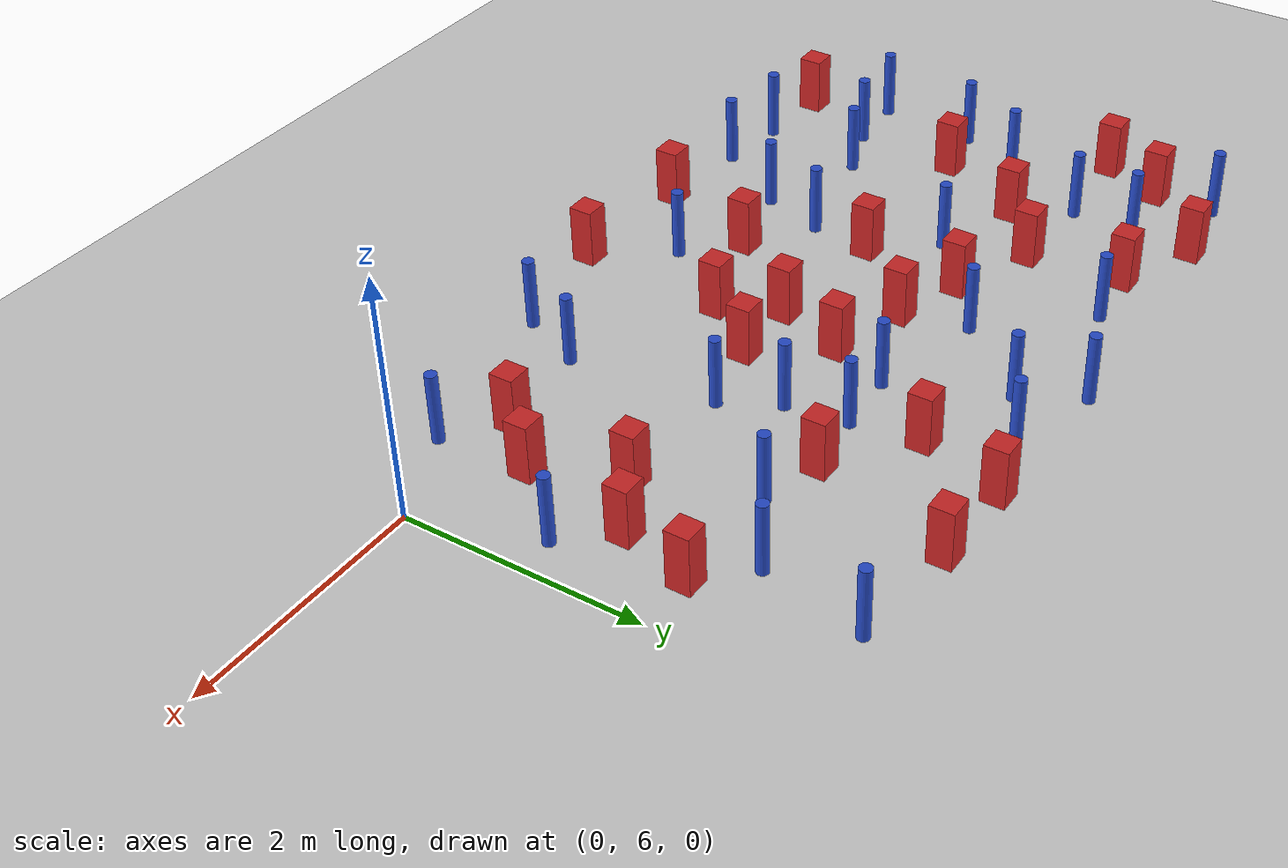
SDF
<sdf version="1.6">
 <world name="default">
  <model name="ground_plane">
   <static>1</static>
   <link name="link">
    <collision name="collision">
     <geometry><plane><normal>0 0 1</normal><size>100 100</size></plane></geometry>
     <surface><friction><ode><mu>100</mu><mu2>50</mu2></ode></friction></surface>
    </collision>
    <visual name="visual">
     <cast_shadows>0</cast_shadows>
     <geometry><plane><normal>0 0 1</normal><size>100 100</size></plane></geometry>
     <material>
      <ambient>1.0 1.0 1.0 1.0</ambient>
      <diffuse>0.8 0.8 0.8 1.0</diffuse>
      <specular>0.01 0.01 0.01 1.000000</specular>
     </material>
    </visual>
   </link>
  </model>
  <model name="square_post_obstacle2">
   <static>true</static>
   <pose>-4.08696699237 6.18020313436 1.91545236811e-07 -7.35059704564e-06 1.12565212e-07 2.39332434364e-05</pose>
   <link name="link">
    <pose>0 0 0.25 0 -0 0</pose>
    <inertial>
     <mass>100</mass>
     <inertia>
      <ixx>0.166667</ixx>
      <ixy>0</ixy>
      <ixz>0</ixz>
      <iyy>0.166667</iyy>
      <iyz>0</iyz>
      <izz>0.166667</izz>
     </inertia>
    </inertial>
    <collision name="collision"><geometry><box><size>.2 .2 .5</size></box></geometry></collision>
    <visual name="visual">
     <geometry><box><size>.2 .2 .5</size></box></geometry>
     <material>
      <script><name>Gazebo/Red</name><uri>file://media/materials/scripts/gazebo.material</uri></script>
     </material>
    </visual>
   </link>
  </model>
  <model name="pole_obstacle3">
   <static>true</static>
   <pose>-3.40958924151 8.97512977727 7.38925637345e-09 -8.47170692799e-08 1.24976765012e-08 -1.74513093021e-07</pose>
   <link name="link">
    <pose>0 0 0.3 0 -0 0</pose>
    <inertial>
     <mass>1</mass>
     <inertia><ixx>0.145833</ixx><ixy>0</ixy><ixz>0</ixz><iyy>0.145833</iyy><iyz>0</iyz><izz>0.125</izz></inertia>
    </inertial>
    <collision name="collision">
     <geometry><cylinder><radius>0.05</radius><length>.6</length></cylinder></geometry>
    </collision>
    <visual name="visual">
     <geometry><cylinder><radius>0.05</radius><length>.6</length></cylinder></geometry>
     <material>
      <script><name>Gazebo/Blue</name><uri>file://media/materials/scripts/gazebo.material</uri></script>
     </material>
    </visual>
   </link>
  </model>
  <model name="square_post_obstacle4">
   <static>true</static>
   <pose>-1.94257678499 8.1703270499 1.91545236811e-07 -7.35059704564e-06 1.12565212e-07 2.39332434364e-05</pose>
   <link name="link">
    <pose>0 0 0.25 0 -0 0</pose>
    <inertial>
     <mass>100</mass>
     <inertia>
      <ixx>0.166667</ixx>
      <ixy>0</ixy>
      <ixz>0</ixz>
      <iyy>0.166667</iyy>
      <iyz>0</iyz>
      <izz>0.166667</izz>
     </inertia>
    </inertial>
    <collision name="collision"><geometry><box><size>.2 .2 .5</size></box></geometry></collision>
    <visual name="visual">
     <geometry><box><size>.2 .2 .5</size></box></geometry>
     <material>
      <script><name>Gazebo/Red</name><uri>file://media/materials/scripts/gazebo.material</uri></script>
     </material>
    </visual>
   </link>
  </model>
  <model name="pole_obstacle15">
   <static>true</static>
   <pose>-2.49472239428 8.10000024564 7.38925637345e-09 -8.47170692793e-08 1.24976764408e-08 -1.74513093041e-07</pose>
   <link name="link">
    <pose>0 0 0.3 0 -0 0</pose>
    <inertial>
     <mass>1</mass>
     <inertia><ixx>0.145833</ixx><ixy>0</ixy><ixz>0</ixz><iyy>0.145833</iyy><iyz>0</iyz><izz>0.125</izz></inertia>
    </inertial>
    <collision name="collision">
     <geometry><cylinder><radius>0.05</radius><length>.6</length></cylinder></geometry>
    </collision>
    <visual name="visual">
     <geometry><cylinder><radius>0.05</radius><length>.6</length></cylinder></geometry>
     <material>
      <script><name>Gazebo/Blue</name><uri>file://media/materials/scripts/gazebo.material</uri></script>
     </material>
    </visual>
   </link>
  </model>
  <model name="pole_obstacle21">
   <static>true</static>
   <pose>-2.42110401922 7.58656722481 7.38925637345e-09 -8.47170692798e-08 1.24976765033e-08 -1.74513093019e-07</pose>
   <link name="link">
    <pose>0 0 0.3 0 -0 0</pose>
    <inertial>
     <mass>1</mass>
     <inertia><ixx>0.145833</ixx><ixy>0</ixy><ixz>0</ixz><iyy>0.145833</iyy><iyz>0</iyz><izz>0.125</izz></inertia>
    </inertial>
    <collision name="collision">
     <geometry><cylinder><radius>0.05</radius><length>.6</length></cylinder></geometry>
    </collision>
    <visual name="visual">
     <geometry><cylinder><radius>0.05</radius><length>.6</length></cylinder></geometry>
     <material>
      <script><name>Gazebo/Blue</name><uri>file://media/materials/scripts/gazebo.material</uri></script>
     </material>
    </visual>
   </link>
  </model>
  <model name="pole_obstacle25">
   <static>true</static>
   <pose>-2.28186651283 5.36492532346 7.38925637345e-09 -8.47170692798e-08 1.24976765033e-08 -1.74513093019e-07</pose>
   <link name="link">
    <pose>0 0 0.3 0 -0 0</pose>
    <inertial>
     <mass>1</mass>
     <inertia><ixx>0.145833</ixx><ixy>0</ixy><ixz>0</ixz><iyy>0.145833</iyy><iyz>0</iyz><izz>0.125</izz></inertia>
    </inertial>
    <collision name="collision">
     <geometry><cylinder><radius>0.05</radius><length>.6</length></cylinder></geometry>
    </collision>
    <visual name="visual">
     <geometry><cylinder><radius>0.05</radius><length>.6</length></cylinder></geometry>
     <material>
      <script><name>Gazebo/Blue</name><uri>file://media/materials/scripts/gazebo.material</uri></script>
     </material>
    </visual>
   </link>
  </model>
  <model name="pole_obstacle29">
   <static>true</static>
   <pose>-4.01178348457 8.30314421972 7.38925637345e-09 -8.47170692799e-08 1.24976765075e-08 -1.74513093015e-07</pose>
   <link name="link">
    <pose>0 0 0.3 0 -0 0</pose>
    <inertial>
     <mass>1</mass>
     <inertia><ixx>0.145833</ixx><ixy>0</ixy><ixz>0</ixz><iyy>0.145833</iyy><iyz>0</iyz><izz>0.125</izz></inertia>
    </inertial>
    <collision name="collision">
     <geometry><cylinder><radius>0.05</radius><length>.6</length></cylinder></geometry>
    </collision>
    <visual name="visual">
     <geometry><cylinder><radius>0.05</radius><length>.6</length></cylinder></geometry>
     <material>
      <script><name>Gazebo/Blue</name><uri>file://media/materials/scripts/gazebo.material</uri></script>
     </material>
    </visual>
   </link>
  </model>
  <model name="pole_obstacle35">
   <static>true</static>
   <pose>-4.69160205721 9.10326875302 7.38925637345e-09 -8.471706928e-08 1.24976765081e-08 -1.74513093015e-07</pose>
   <link name="link">
    <pose>0 0 0.3 0 -0 0</pose>
    <inertial>
     <mass>1</mass>
     <inertia><ixx>0.145833</ixx><ixy>0</ixy><ixz>0</ixz><iyy>0.145833</iyy><iyz>0</iyz><izz>0.125</izz></inertia>
    </inertial>
    <collision name="collision">
     <geometry><cylinder><radius>0.05</radius><length>.6</length></cylinder></geometry>
    </collision>
    <visual name="visual">
     <geometry><cylinder><radius>0.05</radius><length>.6</length></cylinder></geometry>
     <material>
      <script><name>Gazebo/Blue</name><uri>file://media/materials/scripts/gazebo.material</uri></script>
     </material>
    </visual>
   </link>
  </model>
  <model name="square_post_obstacle36">
   <static>true</static>
   <pose>-0.634425203087 7.41490319729 1.91545236811e-07 -7.35059704564e-06 1.12565212e-07 2.39332434364e-05</pose>
   <link name="link">
    <pose>0 0 0.25 0 -0 0</pose>
    <inertial>
     <mass>100</mass>
     <inertia>
      <ixx>0.166667</ixx>
      <ixy>0</ixy>
      <ixz>0</ixz>
      <iyy>0.166667</iyy>
      <iyz>0</iyz>
      <izz>0.166667</izz>
     </inertia>
    </inertial>
    <collision name="collision"><geometry><box><size>.2 .2 .5</size></box></geometry></collision>
    <visual name="visual">
     <geometry><box><size>.2 .2 .5</size></box></geometry>
     <material>
      <script><name>Gazebo/Red</name><uri>file://media/materials/scripts/gazebo.material</uri></script>
     </material>
    </visual>
   </link>
  </model>
  <model name="square_post_obstacle39">
   <static>true</static>
   <pose>-1.19365380607 6.01688733724 1.91545236811e-07 -7.35059704564e-06 1.12565212e-07 2.39332434364e-05</pose>
   <link name="link">
    <pose>0 0 0.25 0 -0 0</pose>
    <inertial>
     <mass>100</mass>
     <inertia>
      <ixx>0.166667</ixx>
      <ixy>0</ixy>
      <ixz>0</ixz>
      <iyy>0.166667</iyy>
      <iyz>0</iyz>
      <izz>0.166667</izz>
     </inertia>
    </inertial>
    <collision name="collision"><geometry><box><size>.2 .2 .5</size></box></geometry></collision>
    <visual name="visual">
     <geometry><box><size>.2 .2 .5</size></box></geometry>
     <material>
      <script><name>Gazebo/Red</name><uri>file://media/materials/scripts/gazebo.material</uri></script>
     </material>
    </visual>
   </link>
  </model>
  <model name="pole_obstacle39">
   <static>true</static>
   <pose>-4.96155892591 7.56960836068 7.38925637345e-09 -8.47170692796e-08 1.24976764786e-08 -1.74513093032e-07</pose>
   <link name="link">
    <pose>0 0 0.3 0 -0 0</pose>
    <inertial>
     <mass>1</mass>
     <inertia><ixx>0.145833</ixx><ixy>0</ixy><ixz>0</ixz><iyy>0.145833</iyy><iyz>0</iyz><izz>0.125</izz></inertia>
    </inertial>
    <collision name="collision">
     <geometry><cylinder><radius>0.05</radius><length>.6</length></cylinder></geometry>
    </collision>
    <visual name="visual">
     <geometry><cylinder><radius>0.05</radius><length>.6</length></cylinder></geometry>
     <material>
      <script><name>Gazebo/Blue</name><uri>file://media/materials/scripts/gazebo.material</uri></script>
     </material>
    </visual>
   </link>
  </model>
  <model name="square_post_obstacle40">
   <static>true</static>
   <pose>-2.3351045229 9.38596355213 1.91545236811e-07 -7.35059704564e-06 1.12565212e-07 2.39332434364e-05</pose>
   <link name="link">
    <pose>0 0 0.25 0 -0 0</pose>
    <inertial>
     <mass>100</mass>
     <inertia>
      <ixx>0.166667</ixx>
      <ixy>0</ixy>
      <ixz>0</ixz>
      <iyy>0.166667</iyy>
      <iyz>0</iyz>
      <izz>0.166667</izz>
     </inertia>
    </inertial>
    <collision name="collision"><geometry><box><size>.2 .2 .5</size></box></geometry></collision>
    <visual name="visual">
     <geometry><box><size>.2 .2 .5</size></box></geometry>
     <material>
      <script><name>Gazebo/Red</name><uri>file://media/materials/scripts/gazebo.material</uri></script>
     </material>
    </visual>
   </link>
  </model>
  <model name="square_post_obstacle42">
   <static>true</static>
   <pose>-5.15264090439 8.25051557948 1.91545236811e-07 -7.35059704564e-06 1.12565212e-07 2.39332434364e-05</pose>
   <link name="link">
    <pose>0 0 0.25 0 -0 0</pose>
    <inertial>
     <mass>100</mass>
     <inertia>
      <ixx>0.166667</ixx>
      <ixy>0</ixy>
      <ixz>0</ixz>
      <iyy>0.166667</iyy>
      <iyz>0</iyz>
      <izz>0.166667</izz>
     </inertia>
    </inertial>
    <collision name="collision"><geometry><box><size>.2 .2 .5</size></box></geometry></collision>
    <visual name="visual">
     <geometry><box><size>.2 .2 .5</size></box></geometry>
     <material>
      <script><name>Gazebo/Red</name><uri>file://media/materials/scripts/gazebo.material</uri></script>
     </material>
    </visual>
   </link>
  </model>
  <model name="square_post_obstacle46">
   <static>true</static>
   <pose>-3.21342774587 7.56674703416 1.91545236811e-07 -7.35059704564e-06 1.12565212e-07 2.39332434364e-05</pose>
   <link name="link">
    <pose>0 0 0.25 0 -0 0</pose>
    <inertial>
     <mass>100</mass>
     <inertia>
      <ixx>0.166667</ixx>
      <ixy>0</ixy>
      <ixz>0</ixz>
      <iyy>0.166667</iyy>
      <iyz>0</iyz>
      <izz>0.166667</izz>
     </inertia>
    </inertial>
    <collision name="collision"><geometry><box><size>.2 .2 .5</size></box></geometry></collision>
    <visual name="visual">
     <geometry><box><size>.2 .2 .5</size></box></geometry>
     <material>
      <script><name>Gazebo/Red</name><uri>file://media/materials/scripts/gazebo.material</uri></script>
     </material>
    </visual>
   </link>
  </model>
  <model name="square_post_obstacle47">
   <static>true</static>
   <pose>-3.87257575507 7.75654048685 1.91545236811e-07 -7.35059704564e-06 1.12565212e-07 2.39332434364e-05</pose>
   <link name="link">
    <pose>0 0 0.25 0 -0 0</pose>
    <inertial>
     <mass>100</mass>
     <inertia>
      <ixx>0.166667</ixx>
      <ixy>0</ixy>
      <ixz>0</ixz>
      <iyy>0.166667</iyy>
      <iyz>0</iyz>
      <izz>0.166667</izz>
     </inertia>
    </inertial>
    <collision name="collision"><geometry><box><size>.2 .2 .5</size></box></geometry></collision>
    <visual name="visual">
     <geometry><box><size>.2 .2 .5</size></box></geometry>
     <material>
      <script><name>Gazebo/Red</name><uri>file://media/materials/scripts/gazebo.material</uri></script>
     </material>
    </visual>
   </link>
  </model>
  <model name="square_post_obstacle48">
   <static>true</static>
   <pose>-6.09147050206 7.04493701776 1.91545236811e-07 -7.35059704564e-06 1.12565212e-07 2.39332434364e-05</pose>
   <link name="link">
    <pose>0 0 0.25 0 -0 0</pose>
    <inertial>
     <mass>100</mass>
     <inertia>
      <ixx>0.166667</ixx>
      <ixy>0</ixy>
      <ixz>0</ixz>
      <iyy>0.166667</iyy>
      <iyz>0</iyz>
      <izz>0.166667</izz>
     </inertia>
    </inertial>
    <collision name="collision"><geometry><box><size>.2 .2 .5</size></box></geometry></collision>
    <visual name="visual">
     <geometry><box><size>.2 .2 .5</size></box></geometry>
     <material>
      <script><name>Gazebo/Red</name><uri>file://media/materials/scripts/gazebo.material</uri></script>
     </material>
    </visual>
   </link>
  </model>
  <model name="pole_obstacle52">
   <static>true</static>
   <pose>-1.44875402154 8.01813655431 7.38925637345e-09 -8.471706928e-08 1.24976765113e-08 -1.74513093014e-07</pose>
   <link name="link">
    <pose>0 0 0.3 0 -0 0</pose>
    <inertial>
     <mass>1</mass>
     <inertia><ixx>0.145833</ixx><ixy>0</ixy><ixz>0</ixz><iyy>0.145833</iyy><iyz>0</iyz><izz>0.125</izz></inertia>
    </inertial>
    <collision name="collision">
     <geometry><cylinder><radius>0.05</radius><length>.6</length></cylinder></geometry>
    </collision>
    <visual name="visual">
     <geometry><cylinder><radius>0.05</radius><length>.6</length></cylinder></geometry>
     <material>
      <script><name>Gazebo/Blue</name><uri>file://media/materials/scripts/gazebo.material</uri></script>
     </material>
    </visual>
   </link>
  </model>
  <model name="pole_obstacle53">
   <static>true</static>
   <pose>-4.7933635278 5.99765492462 7.38925637345e-09 -8.47170692796e-08 1.24976764786e-08 -1.74513093032e-07</pose>
   <link name="link">
    <pose>0 0 0.3 0 -0 0</pose>
    <inertial>
     <mass>1</mass>
     <inertia><ixx>0.145833</ixx><ixy>0</ixy><ixz>0</ixz><iyy>0.145833</iyy><iyz>0</iyz><izz>0.125</izz></inertia>
    </inertial>
    <collision name="collision">
     <geometry><cylinder><radius>0.05</radius><length>.6</length></cylinder></geometry>
    </collision>
    <visual name="visual">
     <geometry><cylinder><radius>0.05</radius><length>.6</length></cylinder></geometry>
     <material>
      <script><name>Gazebo/Blue</name><uri>file://media/materials/scripts/gazebo.material</uri></script>
     </material>
    </visual>
   </link>
  </model>
  <model name="pole_obstacle59">
   <static>true</static>
   <pose>-0.77320267444 5.66204168332 7.38925637345e-09 -8.471706928e-08 1.24976765086e-08 -1.74513093015e-07</pose>
   <link name="link">
    <pose>0 0 0.3 0 -0 0</pose>
    <inertial>
     <mass>1</mass>
     <inertia><ixx>0.145833</ixx><ixy>0</ixy><ixz>0</ixz><iyy>0.145833</iyy><iyz>0</iyz><izz>0.125</izz></inertia>
    </inertial>
    <collision name="collision">
     <geometry><cylinder><radius>0.05</radius><length>.6</length></cylinder></geometry>
    </collision>
    <visual name="visual">
     <geometry><cylinder><radius>0.05</radius><length>.6</length></cylinder></geometry>
     <material>
      <script><name>Gazebo/Blue</name><uri>file://media/materials/scripts/gazebo.material</uri></script>
     </material>
    </visual>
   </link>
  </model>
  <model name="pole_obstacle68">
   <static>true</static>
   <pose>-5.6582532612 6.30687704618 7.38925637345e-09 -8.47170692796e-08 1.24976764786e-08 -1.74513093032e-07</pose>
   <link name="link">
    <pose>0 0 0.3 0 -0 0</pose>
    <inertial>
     <mass>1</mass>
     <inertia><ixx>0.145833</ixx><ixy>0</ixy><ixz>0</ixz><iyy>0.145833</iyy><iyz>0</iyz><izz>0.125</izz></inertia>
    </inertial>
    <collision name="collision">
     <geometry><cylinder><radius>0.05</radius><length>.6</length></cylinder></geometry>
    </collision>
    <visual name="visual">
     <geometry><cylinder><radius>0.05</radius><length>.6</length></cylinder></geometry>
     <material>
      <script><name>Gazebo/Blue</name><uri>file://media/materials/scripts/gazebo.material</uri></script>
     </material>
    </visual>
   </link>
  </model>
  <model name="pole_obstacle86">
   <static>true</static>
   <pose>-6.60397817089 9.28048440079 7.38925637345e-09 -8.471706928e-08 1.24976765081e-08 -1.74513093015e-07</pose>
   <link name="link">
    <pose>0 0 0.3 0 -0 0</pose>
    <inertial>
     <mass>1</mass>
     <inertia><ixx>0.145833</ixx><ixy>0</ixy><ixz>0</ixz><iyy>0.145833</iyy><iyz>0</iyz><izz>0.125</izz></inertia>
    </inertial>
    <collision name="collision">
     <geometry><cylinder><radius>0.05</radius><length>.6</length></cylinder></geometry>
    </collision>
    <visual name="visual">
     <geometry><cylinder><radius>0.05</radius><length>.6</length></cylinder></geometry>
     <material>
      <script><name>Gazebo/Blue</name><uri>file://media/materials/scripts/gazebo.material</uri></script>
     </material>
    </visual>
   </link>
  </model>
  <model name="pole_obstacle91">
   <static>true</static>
   <pose>-6.35601513902 7.51399601596 7.38925637345e-09 -8.47170692796e-08 1.24976764786e-08 -1.74513093032e-07</pose>
   <link name="link">
    <pose>0 0 0.3 0 -0 0</pose>
    <inertial>
     <mass>1</mass>
     <inertia><ixx>0.145833</ixx><ixy>0</ixy><ixz>0</ixz><iyy>0.145833</iyy><iyz>0</iyz><izz>0.125</izz></inertia>
    </inertial>
    <collision name="collision">
     <geometry><cylinder><radius>0.05</radius><length>.6</length></cylinder></geometry>
    </collision>
    <visual name="visual">
     <geometry><cylinder><radius>0.05</radius><length>.6</length></cylinder></geometry>
     <material>
      <script><name>Gazebo/Blue</name><uri>file://media/materials/scripts/gazebo.material</uri></script>
     </material>
    </visual>
   </link>
  </model>
  <model name="pole_obstacle101">
   <static>true</static>
   <pose>-3.71044978352 5.77630626236 7.38925637345e-09 -8.47170692794e-08 1.24976764468e-08 -1.7451309304e-07</pose>
   <link name="link">
    <pose>0 0 0.3 0 -0 0</pose>
    <inertial>
     <mass>1</mass>
     <inertia><ixx>0.145833</ixx><ixy>0</ixy><ixz>0</ixz><iyy>0.145833</iyy><iyz>0</iyz><izz>0.125</izz></inertia>
    </inertial>
    <collision name="collision">
     <geometry><cylinder><radius>0.05</radius><length>.6</length></cylinder></geometry>
    </collision>
    <visual name="visual">
     <geometry><cylinder><radius>0.05</radius><length>.6</length></cylinder></geometry>
     <material>
      <script><name>Gazebo/Blue</name><uri>file://media/materials/scripts/gazebo.material</uri></script>
     </material>
    </visual>
   </link>
  </model>
  <model name="square_post_obstacle95">
   <static>true</static>
   <pose>-1.58668031617 9.36268741837 1.91545236811e-07 -7.35059704564e-06 1.12565212e-07 2.39332434364e-05</pose>
   <link name="link">
    <pose>0 0 0.25 0 -0 0</pose>
    <inertial>
     <mass>100</mass>
     <inertia>
      <ixx>0.166667</ixx>
      <ixy>0</ixy>
      <ixz>0</ixz>
      <iyy>0.166667</iyy>
      <iyz>0</iyz>
      <izz>0.166667</izz>
     </inertia>
    </inertial>
    <collision name="collision"><geometry><box><size>.2 .2 .5</size></box></geometry></collision>
    <visual name="visual">
     <geometry><box><size>.2 .2 .5</size></box></geometry>
     <material>
      <script><name>Gazebo/Red</name><uri>file://media/materials/scripts/gazebo.material</uri></script>
     </material>
    </visual>
   </link>
  </model>
  <model name="square_post_obstacle102">
   <static>true</static>
   <pose>-0.820459691793 6.43376785788 1.91545236811e-07 -7.35059704564e-06 1.12565212e-07 2.39332434364e-05</pose>
   <link name="link">
    <pose>0 0 0.25 0 -0 0</pose>
    <inertial>
     <mass>100</mass>
     <inertia>
      <ixx>0.166667</ixx>
      <ixy>0</ixy>
      <ixz>0</ixz>
      <iyy>0.166667</iyy>
      <iyz>0</iyz>
      <izz>0.166667</izz>
     </inertia>
    </inertial>
    <collision name="collision"><geometry><box><size>.2 .2 .5</size></box></geometry></collision>
    <visual name="visual">
     <geometry><box><size>.2 .2 .5</size></box></geometry>
     <material>
      <script><name>Gazebo/Red</name><uri>file://media/materials/scripts/gazebo.material</uri></script>
     </material>
    </visual>
   </link>
  </model>
  <model name="pole_obstacle118">
   <static>true</static>
   <pose>-5.22107887538 5.32691213291 7.38925637345e-09 -8.47170692796e-08 1.24976764786e-08 -1.74513093032e-07</pose>
   <link name="link">
    <pose>0 0 0.3 0 -0 0</pose>
    <inertial>
     <mass>1</mass>
     <inertia><ixx>0.145833</ixx><ixy>0</ixy><ixz>0</ixz><iyy>0.145833</iyy><iyz>0</iyz><izz>0.125</izz></inertia>
    </inertial>
    <collision name="collision">
     <geometry><cylinder><radius>0.05</radius><length>.6</length></cylinder></geometry>
    </collision>
    <visual name="visual">
     <geometry><cylinder><radius>0.05</radius><length>.6</length></cylinder></geometry>
     <material>
      <script><name>Gazebo/Blue</name><uri>file://media/materials/scripts/gazebo.material</uri></script>
     </material>
    </visual>
   </link>
  </model>
  <model name="square_post_obstacle105">
   <static>true</static>
   <pose>-0.468337408497 8.0217643782 1.91545236811e-07 -7.35059704564e-06 1.12565212e-07 2.39332434364e-05</pose>
   <link name="link">
    <pose>0 0 0.25 0 -0 0</pose>
    <inertial>
     <mass>100</mass>
     <inertia>
      <ixx>0.166667</ixx>
      <ixy>0</ixy>
      <ixz>0</ixz>
      <iyy>0.166667</iyy>
      <iyz>0</iyz>
      <izz>0.166667</izz>
     </inertia>
    </inertial>
    <collision name="collision"><geometry><box><size>.2 .2 .5</size></box></geometry></collision>
    <visual name="visual">
     <geometry><box><size>.2 .2 .5</size></box></geometry>
     <material>
      <script><name>Gazebo/Red</name><uri>file://media/materials/scripts/gazebo.material</uri></script>
     </material>
    </visual>
   </link>
  </model>
  <model name="square_post_obstacle110">
   <static>true</static>
   <pose>-5.23725024286 9.05527912844 1.91545236811e-07 -7.35059704564e-06 1.12565212e-07 2.39332434364e-05</pose>
   <link name="link">
    <pose>0 0 0.25 0 -0 0</pose>
    <inertial>
     <mass>100</mass>
     <inertia>
      <ixx>0.166667</ixx>
      <ixy>0</ixy>
      <ixz>0</ixz>
      <iyy>0.166667</iyy>
      <iyz>0</iyz>
      <izz>0.166667</izz>
     </inertia>
    </inertial>
    <collision name="collision"><geometry><box><size>.2 .2 .5</size></box></geometry></collision>
    <visual name="visual">
     <geometry><box><size>.2 .2 .5</size></box></geometry>
     <material>
      <script><name>Gazebo/Red</name><uri>file://media/materials/scripts/gazebo.material</uri></script>
     </material>
    </visual>
   </link>
  </model>
  <model name="pole_obstacle123">
   <static>true</static>
   <pose>-2.18525332466 7.13585992671 7.38925637345e-09 -8.47170692798e-08 1.24976765033e-08 -1.74513093019e-07</pose>
   <link name="link">
    <pose>0 0 0.3 0 -0 0</pose>
    <inertial>
     <mass>1</mass>
     <inertia><ixx>0.145833</ixx><ixy>0</ixy><ixz>0</ixz><iyy>0.145833</iyy><iyz>0</iyz><izz>0.125</izz></inertia>
    </inertial>
    <collision name="collision">
     <geometry><cylinder><radius>0.05</radius><length>.6</length></cylinder></geometry>
    </collision>
    <visual name="visual">
     <geometry><cylinder><radius>0.05</radius><length>.6</length></cylinder></geometry>
     <material>
      <script><name>Gazebo/Blue</name><uri>file://media/materials/scripts/gazebo.material</uri></script>
     </material>
    </visual>
   </link>
  </model>
  <model name="pole_obstacle138">
   <static>true</static>
   <pose>-2.04545635734 5.90000535007 7.38925637345e-09 -8.471706928e-08 1.24976765103e-08 -1.74513093015e-07</pose>
   <link name="link">
    <pose>0 0 0.3 0 -0 0</pose>
    <inertial>
     <mass>1</mass>
     <inertia><ixx>0.145833</ixx><ixy>0</ixy><ixz>0</ixz><iyy>0.145833</iyy><iyz>0</iyz><izz>0.125</izz></inertia>
    </inertial>
    <collision name="collision">
     <geometry><cylinder><radius>0.05</radius><length>.6</length></cylinder></geometry>
    </collision>
    <visual name="visual">
     <geometry><cylinder><radius>0.05</radius><length>.6</length></cylinder></geometry>
     <material>
      <script><name>Gazebo/Blue</name><uri>file://media/materials/scripts/gazebo.material</uri></script>
     </material>
    </visual>
   </link>
  </model>
  <model name="pole_obstacle143">
   <static>true</static>
   <pose>-4.62286211676 6.54126792948 7.38925637345e-09 -8.47170692796e-08 1.24976764786e-08 -1.74513093032e-07</pose>
   <link name="link">
    <pose>0 0 0.3 0 -0 0</pose>
    <inertial>
     <mass>1</mass>
     <inertia><ixx>0.145833</ixx><ixy>0</ixy><ixz>0</ixz><iyy>0.145833</iyy><iyz>0</iyz><izz>0.125</izz></inertia>
    </inertial>
    <collision name="collision">
     <geometry><cylinder><radius>0.05</radius><length>.6</length></cylinder></geometry>
    </collision>
    <visual name="visual">
     <geometry><cylinder><radius>0.05</radius><length>.6</length></cylinder></geometry>
     <material>
      <script><name>Gazebo/Blue</name><uri>file://media/materials/scripts/gazebo.material</uri></script>
     </material>
    </visual>
   </link>
  </model>
  <model name="pole_obstacle147">
   <static>true</static>
   <pose>-5.8055686989 5.39411957204 7.38925637345e-09 -8.47170692796e-08 1.24976764786e-08 -1.74513093032e-07</pose>
   <link name="link">
    <pose>0 0 0.3 0 -0 0</pose>
    <inertial>
     <mass>1</mass>
     <inertia><ixx>0.145833</ixx><ixy>0</ixy><ixz>0</ixz><iyy>0.145833</iyy><iyz>0</iyz><izz>0.125</izz></inertia>
    </inertial>
    <collision name="collision">
     <geometry><cylinder><radius>0.05</radius><length>.6</length></cylinder></geometry>
    </collision>
    <visual name="visual">
     <geometry><cylinder><radius>0.05</radius><length>.6</length></cylinder></geometry>
     <material>
      <script><name>Gazebo/Blue</name><uri>file://media/materials/scripts/gazebo.material</uri></script>
     </material>
    </visual>
   </link>
  </model>
  <model name="pole_obstacle150">
   <static>true</static>
   <pose>-6.14178081339 6.13746120378 7.38925637345e-09 -8.47170692796e-08 1.24976764786e-08 -1.74513093032e-07</pose>
   <link name="link">
    <pose>0 0 0.3 0 -0 0</pose>
    <inertial>
     <mass>1</mass>
     <inertia><ixx>0.145833</ixx><ixy>0</ixy><ixz>0</ixz><iyy>0.145833</iyy><iyz>0</iyz><izz>0.125</izz></inertia>
    </inertial>
    <collision name="collision">
     <geometry><cylinder><radius>0.05</radius><length>.6</length></cylinder></geometry>
    </collision>
    <visual name="visual">
     <geometry><cylinder><radius>0.05</radius><length>.6</length></cylinder></geometry>
     <material>
      <script><name>Gazebo/Blue</name><uri>file://media/materials/scripts/gazebo.material</uri></script>
     </material>
    </visual>
   </link>
  </model>
  <model name="pole_obstacle152">
   <static>true</static>
   <pose>-0.655866442568 9.26204357178 7.38925637345e-09 -8.47170692797e-08 1.249767648e-08 -1.74513093032e-07</pose>
   <link name="link">
    <pose>0 0 0.3 0 -0 0</pose>
    <inertial>
     <mass>1</mass>
     <inertia><ixx>0.145833</ixx><ixy>0</ixy><ixz>0</ixz><iyy>0.145833</iyy><iyz>0</iyz><izz>0.125</izz></inertia>
    </inertial>
    <collision name="collision">
     <geometry><cylinder><radius>0.05</radius><length>.6</length></cylinder></geometry>
    </collision>
    <visual name="visual">
     <geometry><cylinder><radius>0.05</radius><length>.6</length></cylinder></geometry>
     <material>
      <script><name>Gazebo/Blue</name><uri>file://media/materials/scripts/gazebo.material</uri></script>
     </material>
    </visual>
   </link>
  </model>
  <model name="pole_obstacle153">
   <static>true</static>
   <pose>-5.97672177642 8.2904693648 7.38925637345e-09 -8.471706928e-08 1.24976765081e-08 -1.74513093015e-07</pose>
   <link name="link">
    <pose>0 0 0.3 0 -0 0</pose>
    <inertial>
     <mass>1</mass>
     <inertia><ixx>0.145833</ixx><ixy>0</ixy><ixz>0</ixz><iyy>0.145833</iyy><iyz>0</iyz><izz>0.125</izz></inertia>
    </inertial>
    <collision name="collision">
     <geometry><cylinder><radius>0.05</radius><length>.6</length></cylinder></geometry>
    </collision>
    <visual name="visual">
     <geometry><cylinder><radius>0.05</radius><length>.6</length></cylinder></geometry>
     <material>
      <script><name>Gazebo/Blue</name><uri>file://media/materials/scripts/gazebo.material</uri></script>
     </material>
    </visual>
   </link>
  </model>
  <model name="pole_obstacle154">
   <static>true</static>
   <pose>-0.312014094386 7.00983795267 7.38925637345e-09 -8.471706928e-08 1.24976765079e-08 -1.74513093015e-07</pose>
   <link name="link">
    <pose>0 0 0.3 0 -0 0</pose>
    <inertial>
     <mass>1</mass>
     <inertia><ixx>0.145833</ixx><ixy>0</ixy><ixz>0</ixz><iyy>0.145833</iyy><iyz>0</iyz><izz>0.125</izz></inertia>
    </inertial>
    <collision name="collision">
     <geometry><cylinder><radius>0.05</radius><length>.6</length></cylinder></geometry>
    </collision>
    <visual name="visual">
     <geometry><cylinder><radius>0.05</radius><length>.6</length></cylinder></geometry>
     <material>
      <script><name>Gazebo/Blue</name><uri>file://media/materials/scripts/gazebo.material</uri></script>
     </material>
    </visual>
   </link>
  </model>
  <model name="square_post_obstacle146">
   <static>true</static>
   <pose>-3.28443474042 5.18222889206 1.91545236811e-07 -7.35059704564e-06 1.12565212e-07 2.39332434364e-05</pose>
   <link name="link">
    <pose>0 0 0.25 0 -0 0</pose>
    <inertial>
     <mass>100</mass>
     <inertia>
      <ixx>0.166667</ixx>
      <ixy>0</ixy>
      <ixz>0</ixz>
      <iyy>0.166667</iyy>
      <iyz>0</iyz>
      <izz>0.166667</izz>
     </inertia>
    </inertial>
    <collision name="collision"><geometry><box><size>.2 .2 .5</size></box></geometry></collision>
    <visual name="visual">
     <geometry><box><size>.2 .2 .5</size></box></geometry>
     <material>
      <script><name>Gazebo/Red</name><uri>file://media/materials/scripts/gazebo.material</uri></script>
     </material>
    </visual>
   </link>
  </model>
  <model name="square_post_obstacle148">
   <static>true</static>
   <pose>-6.8069986825 8.25143732754 1.91545236811e-07 -7.35059704564e-06 1.12565212e-07 2.39332434364e-05</pose>
   <link name="link">
    <pose>0 0 0.25 0 -0 0</pose>
    <inertial>
     <mass>100</mass>
     <inertia>
      <ixx>0.166667</ixx>
      <ixy>0</ixy>
      <ixz>0</ixz>
      <iyy>0.166667</iyy>
      <iyz>0</iyz>
      <izz>0.166667</izz>
     </inertia>
    </inertial>
    <collision name="collision"><geometry><box><size>.2 .2 .5</size></box></geometry></collision>
    <visual name="visual">
     <geometry><box><size>.2 .2 .5</size></box></geometry>
     <material>
      <script><name>Gazebo/Red</name><uri>file://media/materials/scripts/gazebo.material</uri></script>
     </material>
    </visual>
   </link>
  </model>
  <model name="square_post_obstacle149">
   <static>true</static>
   <pose>-1.12334226836 7.12361320429 1.91545236811e-07 -7.35059704564e-06 1.12565212e-07 2.39332434364e-05</pose>
   <link name="link">
    <pose>0 0 0.25 0 -0 0</pose>
    <inertial>
     <mass>100</mass>
     <inertia>
      <ixx>0.166667</ixx>
      <ixy>0</ixy>
      <ixz>0</ixz>
      <iyy>0.166667</iyy>
      <iyz>0</iyz>
      <izz>0.166667</izz>
     </inertia>
    </inertial>
    <collision name="collision"><geometry><box><size>.2 .2 .5</size></box></geometry></collision>
    <visual name="visual">
     <geometry><box><size>.2 .2 .5</size></box></geometry>
     <material>
      <script><name>Gazebo/Red</name><uri>file://media/materials/scripts/gazebo.material</uri></script>
     </material>
    </visual>
   </link>
  </model>
  <model name="square_post_obstacle154">
   <static>true</static>
   <pose>-4.54397332136 7.0826201514 1.91545236811e-07 -7.35059704564e-06 1.12565212e-07 2.39332434364e-05</pose>
   <link name="link">
    <pose>0 0 0.25 0 -0 0</pose>
    <inertial>
     <mass>100</mass>
     <inertia>
      <ixx>0.166667</ixx>
      <ixy>0</ixy>
      <ixz>0</ixz>
      <iyy>0.166667</iyy>
      <iyz>0</iyz>
      <izz>0.166667</izz>
     </inertia>
    </inertial>
    <collision name="collision"><geometry><box><size>.2 .2 .5</size></box></geometry></collision>
    <visual name="visual">
     <geometry><box><size>.2 .2 .5</size></box></geometry>
     <material>
      <script><name>Gazebo/Red</name><uri>file://media/materials/scripts/gazebo.material</uri></script>
     </material>
    </visual>
   </link>
  </model>
  <model name="pole_obstacle163">
   <static>true</static>
   <pose>-3.03274331533 8.06505137518 7.38925637345e-09 -8.47170692793e-08 1.24976764408e-08 -1.74513093041e-07</pose>
   <link name="link">
    <pose>0 0 0.3 0 -0 0</pose>
    <inertial>
     <mass>1</mass>
     <inertia><ixx>0.145833</ixx><ixy>0</ixy><ixz>0</ixz><iyy>0.145833</iyy><iyz>0</iyz><izz>0.125</izz></inertia>
    </inertial>
    <collision name="collision">
     <geometry><cylinder><radius>0.05</radius><length>.6</length></cylinder></geometry>
    </collision>
    <visual name="visual">
     <geometry><cylinder><radius>0.05</radius><length>.6</length></cylinder></geometry>
     <material>
      <script><name>Gazebo/Blue</name><uri>file://media/materials/scripts/gazebo.material</uri></script>
     </material>
    </visual>
   </link>
  </model>
  <model name="square_post_obstacle160">
   <static>true</static>
   <pose>-5.68297586807 7.83076603731 1.91545236811e-07 -7.35059704564e-06 1.12565212e-07 2.39332434364e-05</pose>
   <link name="link">
    <pose>0 0 0.25 0 -0 0</pose>
    <inertial>
     <mass>100</mass>
     <inertia>
      <ixx>0.166667</ixx>
      <ixy>0</ixy>
      <ixz>0</ixz>
      <iyy>0.166667</iyy>
      <iyz>0</iyz>
      <izz>0.166667</izz>
     </inertia>
    </inertial>
    <collision name="collision"><geometry><box><size>.2 .2 .5</size></box></geometry></collision>
    <visual name="visual">
     <geometry><box><size>.2 .2 .5</size></box></geometry>
     <material>
      <script><name>Gazebo/Red</name><uri>file://media/materials/scripts/gazebo.material</uri></script>
     </material>
    </visual>
   </link>
  </model>
  <model name="pole_obstacle171">
   <static>true</static>
   <pose>-3.67910185884 9.46648139004 7.38925637345e-09 -8.47170692793e-08 1.24976764408e-08 -1.74513093041e-07</pose>
   <link name="link">
    <pose>0 0 0.3 0 -0 0</pose>
    <inertial>
     <mass>1</mass>
     <inertia><ixx>0.145833</ixx><ixy>0</ixy><ixz>0</ixz><iyy>0.145833</iyy><iyz>0</iyz><izz>0.125</izz></inertia>
    </inertial>
    <collision name="collision">
     <geometry><cylinder><radius>0.05</radius><length>.6</length></cylinder></geometry>
    </collision>
    <visual name="visual">
     <geometry><cylinder><radius>0.05</radius><length>.6</length></cylinder></geometry>
     <material>
      <script><name>Gazebo/Blue</name><uri>file://media/materials/scripts/gazebo.material</uri></script>
     </material>
    </visual>
   </link>
  </model>
  <model name="square_post_obstacle163">
   <static>true</static>
   <pose>-4.45433677787 7.96075167962 1.91545236811e-07 -7.35059704564e-06 1.12565212e-07 2.39332434364e-05</pose>
   <link name="link">
    <pose>0 0 0.25 0 -0 0</pose>
    <inertial>
     <mass>100</mass>
     <inertia>
      <ixx>0.166667</ixx>
      <ixy>0</ixy>
      <ixz>0</ixz>
      <iyy>0.166667</iyy>
      <iyz>0</iyz>
      <izz>0.166667</izz>
     </inertia>
    </inertial>
    <collision name="collision"><geometry><box><size>.2 .2 .5</size></box></geometry></collision>
    <visual name="visual">
     <geometry><box><size>.2 .2 .5</size></box></geometry>
     <material>
      <script><name>Gazebo/Red</name><uri>file://media/materials/scripts/gazebo.material</uri></script>
     </material>
    </visual>
   </link>
  </model>
  <model name="square_post_obstacle167">
   <static>true</static>
   <pose>-3.42352071097 6.97677424563 1.91545236811e-07 -7.35059704564e-06 1.12565212e-07 2.39332434364e-05</pose>
   <link name="link">
    <pose>0 0 0.25 0 -0 0</pose>
    <inertial>
     <mass>100</mass>
     <inertia>
      <ixx>0.166667</ixx>
      <ixy>0</ixy>
      <ixz>0</ixz>
      <iyy>0.166667</iyy>
      <iyz>0</iyz>
      <izz>0.166667</izz>
     </inertia>
    </inertial>
    <collision name="collision"><geometry><box><size>.2 .2 .5</size></box></geometry></collision>
    <visual name="visual">
     <geometry><box><size>.2 .2 .5</size></box></geometry>
     <material>
      <script><name>Gazebo/Red</name><uri>file://media/materials/scripts/gazebo.material</uri></script>
     </material>
    </visual>
   </link>
  </model>
  <model name="pole_obstacle181">
   <static>true</static>
   <pose>-0.836165735155 8.38915919518 7.38925637345e-09 -8.47170692797e-08 1.249767648e-08 -1.74513093032e-07</pose>
   <link name="link">
    <pose>0 0 0.3 0 -0 0</pose>
    <inertial>
     <mass>1</mass>
     <inertia><ixx>0.145833</ixx><ixy>0</ixy><ixz>0</ixz><iyy>0.145833</iyy><iyz>0</iyz><izz>0.125</izz></inertia>
    </inertial>
    <collision name="collision">
     <geometry><cylinder><radius>0.05</radius><length>.6</length></cylinder></geometry>
    </collision>
    <visual name="visual">
     <geometry><cylinder><radius>0.05</radius><length>.6</length></cylinder></geometry>
     <material>
      <script><name>Gazebo/Blue</name><uri>file://media/materials/scripts/gazebo.material</uri></script>
     </material>
    </visual>
   </link>
  </model>
  <model name="pole_obstacle183">
   <static>true</static>
   <pose>-6.60518295874 6.9611081427 7.38925637345e-09 -8.47170692796e-08 1.24976764786e-08 -1.74513093032e-07</pose>
   <link name="link">
    <pose>0 0 0.3 0 -0 0</pose>
    <inertial>
     <mass>1</mass>
     <inertia><ixx>0.145833</ixx><ixy>0</ixy><ixz>0</ixz><iyy>0.145833</iyy><iyz>0</iyz><izz>0.125</izz></inertia>
    </inertial>
    <collision name="collision">
     <geometry><cylinder><radius>0.05</radius><length>.6</length></cylinder></geometry>
    </collision>
    <visual name="visual">
     <geometry><cylinder><radius>0.05</radius><length>.6</length></cylinder></geometry>
     <material>
      <script><name>Gazebo/Blue</name><uri>file://media/materials/scripts/gazebo.material</uri></script>
     </material>
    </visual>
   </link>
  </model>
  <model name="square_post_obstacle173">
   <static>true</static>
   <pose>-5.90993798425 9.36205959601 1.91545236811e-07 -7.35059704564e-06 1.12565212e-07 2.39332434364e-05</pose>
   <link name="link">
    <pose>0 0 0.25 0 -0 0</pose>
    <inertial>
     <mass>100</mass>
     <inertia>
      <ixx>0.166667</ixx>
      <ixy>0</ixy>
      <ixz>0</ixz>
      <iyy>0.166667</iyy>
      <iyz>0</iyz>
      <izz>0.166667</izz>
     </inertia>
    </inertial>
    <collision name="collision"><geometry><box><size>.2 .2 .5</size></box></geometry></collision>
    <visual name="visual">
     <geometry><box><size>.2 .2 .5</size></box></geometry>
     <material>
      <script><name>Gazebo/Red</name><uri>file://media/materials/scripts/gazebo.material</uri></script>
     </material>
    </visual>
   </link>
  </model>
  <model name="square_post_obstacle176">
   <static>true</static>
   <pose>-4.41064235671 5.25064218217 1.91545236811e-07 -7.35059704564e-06 1.12565212e-07 2.39332434364e-05</pose>
   <link name="link">
    <pose>0 0 0.25 0 -0 0</pose>
    <inertial>
     <mass>100</mass>
     <inertia>
      <ixx>0.166667</ixx>
      <ixy>0</ixy>
      <ixz>0</ixz>
      <iyy>0.166667</iyy>
      <iyz>0</iyz>
      <izz>0.166667</izz>
     </inertia>
    </inertial>
    <collision name="collision"><geometry><box><size>.2 .2 .5</size></box></geometry></collision>
    <visual name="visual">
     <geometry><box><size>.2 .2 .5</size></box></geometry>
     <material>
      <script><name>Gazebo/Red</name><uri>file://media/materials/scripts/gazebo.material</uri></script>
     </material>
    </visual>
   </link>
  </model>
  <model name="square_post_obstacle182">
   <static>true</static>
   <pose>-6.44740756808 5.44818615864 1.91545236811e-07 -7.35059704564e-06 1.12565212e-07 2.39332434364e-05</pose>
   <link name="link">
    <pose>0 0 0.25 0 -0 0</pose>
    <inertial>
     <mass>100</mass>
     <inertia>
      <ixx>0.166667</ixx>
      <ixy>0</ixy>
      <ixz>0</ixz>
      <iyy>0.166667</iyy>
      <iyz>0</iyz>
      <izz>0.166667</izz>
     </inertia>
    </inertial>
    <collision name="collision"><geometry><box><size>.2 .2 .5</size></box></geometry></collision>
    <visual name="visual">
     <geometry><box><size>.2 .2 .5</size></box></geometry>
     <material>
      <script><name>Gazebo/Red</name><uri>file://media/materials/scripts/gazebo.material</uri></script>
     </material>
    </visual>
   </link>
  </model>
  <model name="square_post_obstacle203">
   <static>true</static>
   <pose>-2.81123211055 6.99119482247 1.91545236811e-07 -7.35059704564e-06 1.12565212e-07 2.39332434364e-05</pose>
   <link name="link">
    <pose>0 0 0.25 0 -0 0</pose>
    <inertial>
     <mass>100</mass>
     <inertia>
      <ixx>0.166667</ixx>
      <ixy>0</ixy>
      <ixz>0</ixz>
      <iyy>0.166667</iyy>
      <iyz>0</iyz>
      <izz>0.166667</izz>
     </inertia>
    </inertial>
    <collision name="collision"><geometry><box><size>.2 .2 .5</size></box></geometry></collision>
    <visual name="visual">
     <geometry><box><size>.2 .2 .5</size></box></geometry>
     <material>
      <script><name>Gazebo/Red</name><uri>file://media/materials/scripts/gazebo.material</uri></script>
     </material>
    </visual>
   </link>
  </model>
  <model name="pole_obstacle202">
   <static>true</static>
   <pose>-6.68224485004 6.09963767332 7.38925637345e-09 -8.47170692796e-08 1.24976764786e-08 -1.74513093032e-07</pose>
   <link name="link">
    <pose>0 0 0.3 0 -0 0</pose>
    <inertial>
     <mass>1</mass>
     <inertia><ixx>0.145833</ixx><ixy>0</ixy><ixz>0</ixz><iyy>0.145833</iyy><iyz>0</iyz><izz>0.125</izz></inertia>
    </inertial>
    <collision name="collision">
     <geometry><cylinder><radius>0.05</radius><length>.6</length></cylinder></geometry>
    </collision>
    <visual name="visual">
     <geometry><cylinder><radius>0.05</radius><length>.6</length></cylinder></geometry>
     <material>
      <script><name>Gazebo/Blue</name><uri>file://media/materials/scripts/gazebo.material</uri></script>
     </material>
    </visual>
   </link>
  </model>
  <model name="pole_obstacle204">
   <static>true</static>
   <pose>-2.92256545251 9.23152859345 7.38925637345e-09 -8.47170692793e-08 1.24976764408e-08 -1.74513093041e-07</pose>
   <link name="link">
    <pose>0 0 0.3 0 -0 0</pose>
    <inertial>
     <mass>1</mass>
     <inertia><ixx>0.145833</ixx><ixy>0</ixy><ixz>0</ixz><iyy>0.145833</iyy><iyz>0</iyz><izz>0.125</izz></inertia>
    </inertial>
    <collision name="collision">
     <geometry><cylinder><radius>0.05</radius><length>.6</length></cylinder></geometry>
    </collision>
    <visual name="visual">
     <geometry><cylinder><radius>0.05</radius><length>.6</length></cylinder></geometry>
     <material>
      <script><name>Gazebo/Blue</name><uri>file://media/materials/scripts/gazebo.material</uri></script>
     </material>
    </visual>
   </link>
  </model>
  <model name="pole_obstacle207">
   <static>true</static>
   <pose>-5.95191877114 8.82396934138 7.38925637345e-09 -8.471706928e-08 1.24976765081e-08 -1.74513093015e-07</pose>
   <link name="link">
    <pose>0 0 0.3 0 -0 0</pose>
    <inertial>
     <mass>1</mass>
     <inertia><ixx>0.145833</ixx><ixy>0</ixy><ixz>0</ixz><iyy>0.145833</iyy><iyz>0</iyz><izz>0.125</izz></inertia>
    </inertial>
    <collision name="collision">
     <geometry><cylinder><radius>0.05</radius><length>.6</length></cylinder></geometry>
    </collision>
    <visual name="visual">
     <geometry><cylinder><radius>0.05</radius><length>.6</length></cylinder></geometry>
     <material>
      <script><name>Gazebo/Blue</name><uri>file://media/materials/scripts/gazebo.material</uri></script>
     </material>
    </visual>
   </link>
  </model>
  <model name="square_post_obstacle205">
   <static>true</static>
   <pose>-2.5773200352 8.66826998808 1.91545236811e-07 -7.35059704564e-06 1.12565212e-07 2.39332434364e-05</pose>
   <link name="link">
    <pose>0 0 0.25 0 -0 0</pose>
    <inertial>
     <mass>100</mass>
     <inertia>
      <ixx>0.166667</ixx>
      <ixy>0</ixy>
      <ixz>0</ixz>
      <iyy>0.166667</iyy>
      <iyz>0</iyz>
      <izz>0.166667</izz>
     </inertia>
    </inertial>
    <collision name="collision"><geometry><box><size>.2 .2 .5</size></box></geometry></collision>
    <visual name="visual">
     <geometry><box><size>.2 .2 .5</size></box></geometry>
     <material>
      <script><name>Gazebo/Red</name><uri>file://media/materials/scripts/gazebo.material</uri></script>
     </material>
    </visual>
   </link>
  </model>
  <model name="square_post_obstacle211">
   <static>true</static>
   <pose>-6.5782500352 8.77086998808 1.91545236811e-07 -7.35059704564e-06 1.12565212e-07 2.39332434364e-05</pose>
   <link name="link">
    <pose>0 0 0.25 0 -0 0</pose>
    <inertial>
     <mass>100</mass>
     <inertia>
      <ixx>0.166667</ixx>
      <ixy>0</ixy>
      <ixz>0</ixz>
      <iyy>0.166667</iyy>
      <iyz>0</iyz>
      <izz>0.166667</izz>
     </inertia>
    </inertial>
    <collision name="collision"><geometry><box><size>.2 .2 .5</size></box></geometry></collision>
    <visual name="visual">
     <geometry><box><size>.2 .2 .5</size></box></geometry>
     <material>
      <script><name>Gazebo/Red</name><uri>file://media/materials/scripts/gazebo.material</uri></script>
     </material>
    </visual>
   </link>
  </model>
  <model name="square_post_obstacle214">
   <static>true</static>
   <pose>-3.1979600352 6.48343998808 1.91545236811e-07 -7.35059704564e-06 1.12565212e-07 2.39332434364e-05</pose>
   <link name="link">
    <pose>0 0 0.25 0 -0 0</pose>
    <inertial>
     <mass>100</mass>
     <inertia>
      <ixx>0.166667</ixx>
      <ixy>0</ixy>
      <ixz>0</ixz>
      <iyy>0.166667</iyy>
      <iyz>0</iyz>
      <izz>0.166667</izz>
     </inertia>
    </inertial>
    <collision name="collision"><geometry><box><size>.2 .2 .5</size></box></geometry></collision>
    <visual name="visual">
     <geometry><box><size>.2 .2 .5</size></box></geometry>
     <material>
      <script><name>Gazebo/Red</name><uri>file://media/materials/scripts/gazebo.material</uri></script>
     </material>
    </visual>
   </link>
  </model>
 </world>
</sdf>
